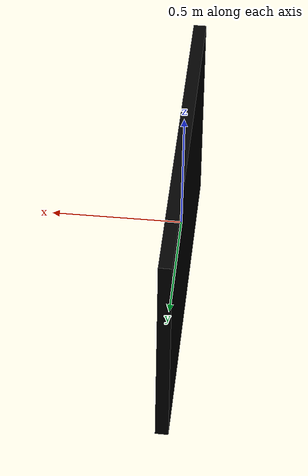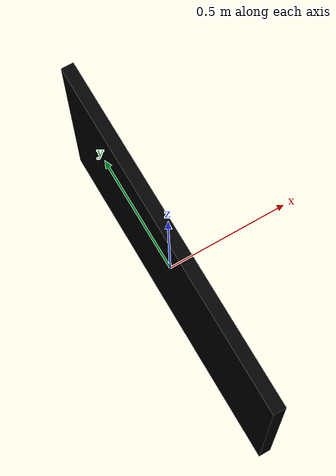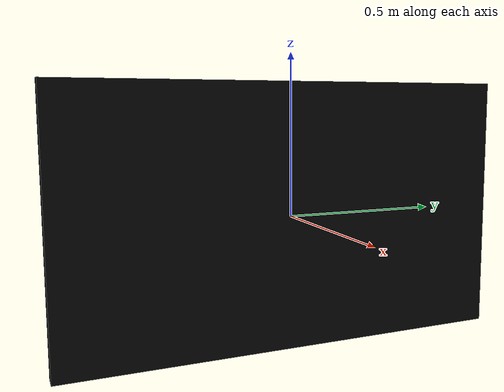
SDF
<?xml version="1.0"?>
<sdf version='1.4'>
  <model name='tv_65in_emissive'>
    <link name="link">
      <visual name="visual">
        <geometry>
          <box>
            <size>0.05 1.45 0.83</size>
          </box>
        </geometry>
        <material>
          <pbr>
            <metal>
              <emissive_map>textures/tv_65in_maldives_909x541.jpg</emissive_map>
            <metalness>0.0</metalness><roughness>0.25</roughness>
            </metal>
          </pbr>
          <ambient>0 0 0 1</ambient>
          <diffuse>0 0 0</diffuse>
          <specular>1 1 1 1</specular>
          <emissive>0.8 0.8 0.8 1</emissive>
        </material>
      </visual>
    </link>
    <static>1</static>
    <allow_auto_disable>1</allow_auto_disable>
  </model>
</sdf>
